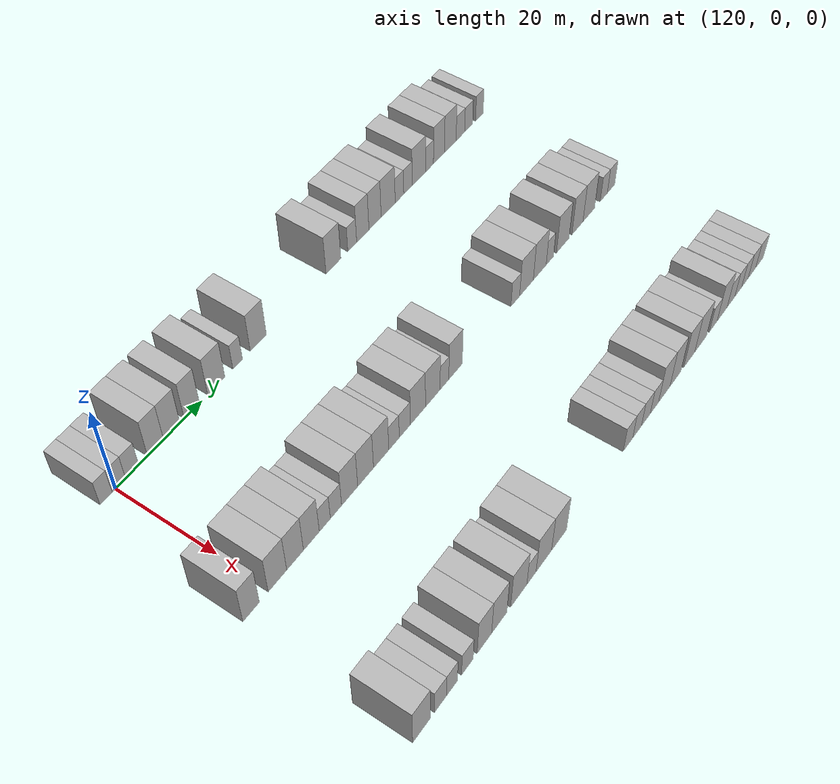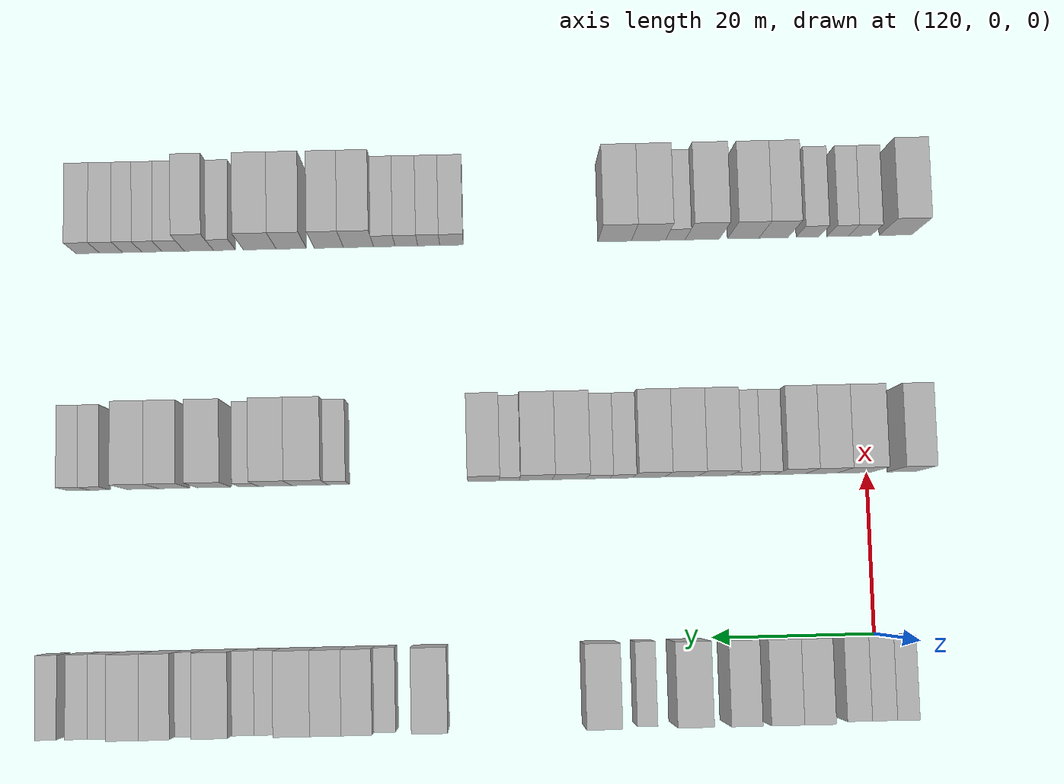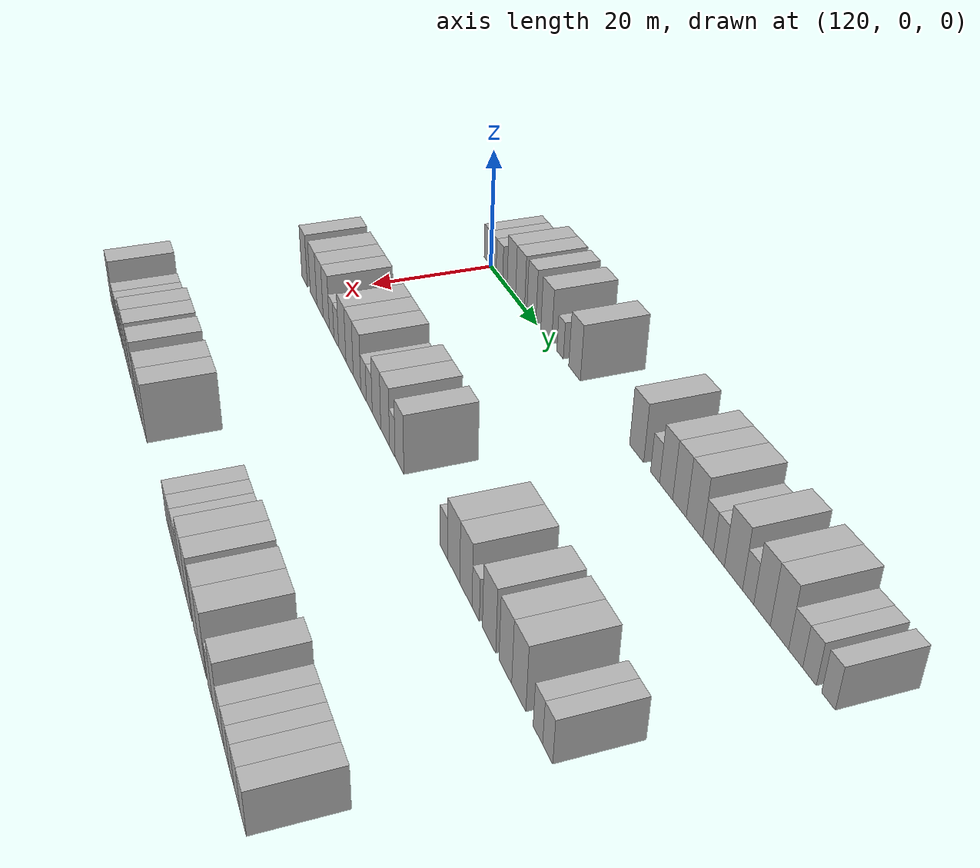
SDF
<sdf version="1.6">
 <world name="default">
  <model name="building_755">
   <static>1</static>
   <pose>115.0000 -2.1229 0 0.000000 0.000000 0.000000</pose>
   <link name="link">
    <pose>0 0 3.00 0 0 0</pose>
    <collision name="collision"><geometry><box><size>10.0000 2.6728 6.0000</size></box></geometry></collision>
    <visual name="visual">
     <cast_shadows>0</cast_shadows>
     <geometry><box><size>10.0000 2.6728 6.0000</size></box></geometry>
     <material>
      <script>
       <uri>model://HANNAS_wall/materials/scripts</uri>
       <uri>model://HANNAS_wall/materials/textures</uri>
       <name>vrc/HANNAS_wall</name>
      </script>
     </material>
    </visual>
   </link>
  </model>
  <model name="building_756">
   <static>1</static>
   <pose>115.0000 0.7068 0 0.000000 0.000000 0.000000</pose>
   <link name="link">
    <pose>0 0 3.00 0 0 0</pose>
    <collision name="collision"><geometry><box><size>10.0000 2.9867 6.0000</size></box></geometry></collision>
    <visual name="visual">
     <cast_shadows>0</cast_shadows>
     <geometry><box><size>10.0000 2.9867 6.0000</size></box></geometry>
     <material>
      <script>
       <uri>model://HANNAS_wall/materials/scripts</uri>
       <uri>model://HANNAS_wall/materials/textures</uri>
       <name>vrc/HANNAS_wall</name>
      </script>
     </material>
    </visual>
   </link>
  </model>
  <model name="building_757">
   <static>1</static>
   <pose>115.0000 3.6858 0 0.000000 0.000000 0.000000</pose>
   <link name="link">
    <pose>0 0 3.00 0 0 0</pose>
    <collision name="collision"><geometry><box><size>10.0000 2.9713 6.0000</size></box></geometry></collision>
    <visual name="visual">
     <cast_shadows>0</cast_shadows>
     <geometry><box><size>10.0000 2.9713 6.0000</size></box></geometry>
     <material>
      <script>
       <uri>model://HANNAS_wall/materials/scripts</uri>
       <uri>model://HANNAS_wall/materials/textures</uri>
       <name>vrc/HANNAS_wall</name>
      </script>
     </material>
    </visual>
   </link>
  </model>
  <model name="building_758">
   <static>1</static>
   <pose>115.0000 9.0283 0 0.000000 0.000000 0.000000</pose>
   <link name="link">
    <pose>0 0 4.50 0 0 0</pose>
    <collision name="collision"><geometry><box><size>10.0000 3.7136 9.0000</size></box></geometry></collision>
    <visual name="visual">
     <cast_shadows>0</cast_shadows>
     <geometry><box><size>10.0000 3.7136 9.0000</size></box></geometry>
     <material>
      <script>
       <uri>model://HANNAS_wall/materials/scripts</uri>
       <uri>model://HANNAS_wall/materials/textures</uri>
       <name>vrc/HANNAS_wall</name>
      </script>
     </material>
    </visual>
   </link>
  </model>
  <model name="building_759">
   <static>1</static>
   <pose>115.0000 12.8214 0 0.000000 0.000000 0.000000</pose>
   <link name="link">
    <pose>0 0 4.50 0 0 0</pose>
    <collision name="collision"><geometry><box><size>10.0000 3.8724 9.0000</size></box></geometry></collision>
    <visual name="visual">
     <cast_shadows>0</cast_shadows>
     <geometry><box><size>10.0000 3.8724 9.0000</size></box></geometry>
     <material>
      <script>
       <uri>model://HANNAS_wall/materials/scripts</uri>
       <uri>model://HANNAS_wall/materials/textures</uri>
       <name>vrc/HANNAS_wall</name>
      </script>
     </material>
    </visual>
   </link>
  </model>
  <model name="building_760">
   <static>1</static>
   <pose>115.0000 17.5966 0 0.000000 0.000000 0.000000</pose>
   <link name="link">
    <pose>0 0 4.50 0 0 0</pose>
    <collision name="collision"><geometry><box><size>10.0000 3.6781 9.0000</size></box></geometry></collision>
    <visual name="visual">
     <cast_shadows>0</cast_shadows>
     <geometry><box><size>10.0000 3.6781 9.0000</size></box></geometry>
     <material>
      <script>
       <uri>model://HANNAS_wall/materials/scripts</uri>
       <uri>model://HANNAS_wall/materials/textures</uri>
       <name>vrc/HANNAS_wall</name>
      </script>
     </material>
    </visual>
   </link>
  </model>
  <model name="building_761">
   <static>1</static>
   <pose>115.0000 23.5737 0 0.000000 0.000000 0.000000</pose>
   <link name="link">
    <pose>0 0 4.50 0 0 0</pose>
    <collision name="collision"><geometry><box><size>10.0000 4.2760 9.0000</size></box></geometry></collision>
    <visual name="visual">
     <cast_shadows>0</cast_shadows>
     <geometry><box><size>10.0000 4.2760 9.0000</size></box></geometry>
     <material>
      <script>
       <uri>model://HANNAS_wall/materials/scripts</uri>
       <uri>model://HANNAS_wall/materials/textures</uri>
       <name>vrc/HANNAS_wall</name>
      </script>
     </material>
    </visual>
   </link>
  </model>
  <model name="building_762">
   <static>1</static>
   <pose>115.0000 28.9309 0 0.000000 0.000000 0.000000</pose>
   <link name="link">
    <pose>0 0 3.00 0 0 0</pose>
    <collision name="collision"><geometry><box><size>10.0000 2.4384 6.0000</size></box></geometry></collision>
    <visual name="visual">
     <cast_shadows>0</cast_shadows>
     <geometry><box><size>10.0000 2.4384 6.0000</size></box></geometry>
     <material>
      <script>
       <uri>model://HANNAS_wall/materials/scripts</uri>
       <uri>model://HANNAS_wall/materials/textures</uri>
       <name>vrc/HANNAS_wall</name>
      </script>
     </material>
    </visual>
   </link>
  </model>
  <model name="building_763">
   <static>1</static>
   <pose>115.0000 34.2504 0 0.000000 0.000000 0.000000</pose>
   <link name="link">
    <pose>0 0 4.50 0 0 0</pose>
    <collision name="collision"><geometry><box><size>10.0000 4.2006 9.0000</size></box></geometry></collision>
    <visual name="visual">
     <cast_shadows>0</cast_shadows>
     <geometry><box><size>10.0000 4.2006 9.0000</size></box></geometry>
     <material>
      <script>
       <uri>model://HANNAS_wall/materials/scripts</uri>
       <uri>model://HANNAS_wall/materials/textures</uri>
       <name>vrc/HANNAS_wall</name>
      </script>
     </material>
    </visual>
   </link>
  </model>
  <model name="building_764">
   <static>1</static>
   <pose>115.0000 54.7267 0 0.000000 0.000000 0.000000</pose>
   <link name="link">
    <pose>0 0 4.50 0 0 0</pose>
    <collision name="collision"><geometry><box><size>10.0000 4.2507 9.0000</size></box></geometry></collision>
    <visual name="visual">
     <cast_shadows>0</cast_shadows>
     <geometry><box><size>10.0000 4.2507 9.0000</size></box></geometry>
     <material>
      <script>
       <uri>model://HANNAS_wall/materials/scripts</uri>
       <uri>model://HANNAS_wall/materials/textures</uri>
       <name>vrc/HANNAS_wall</name>
      </script>
     </material>
    </visual>
   </link>
  </model>
  <model name="building_765">
   <static>1</static>
   <pose>115.0000 60.1450 0 0.000000 0.000000 0.000000</pose>
   <link name="link">
    <pose>0 0 3.00 0 0 0</pose>
    <collision name="collision"><geometry><box><size>10.0000 2.5859 6.0000</size></box></geometry></collision>
    <visual name="visual">
     <cast_shadows>0</cast_shadows>
     <geometry><box><size>10.0000 2.5859 6.0000</size></box></geometry>
     <material>
      <script>
       <uri>model://HANNAS_wall/materials/scripts</uri>
       <uri>model://HANNAS_wall/materials/textures</uri>
       <name>vrc/HANNAS_wall</name>
      </script>
     </material>
    </visual>
   </link>
  </model>
  <model name="building_766">
   <static>1</static>
   <pose>115.0000 63.2514 0 0.000000 0.000000 0.000000</pose>
   <link name="link">
    <pose>0 0 4.50 0 0 0</pose>
    <collision name="collision"><geometry><box><size>10.0000 3.6270 9.0000</size></box></geometry></collision>
    <visual name="visual">
     <cast_shadows>0</cast_shadows>
     <geometry><box><size>10.0000 3.6270 9.0000</size></box></geometry>
     <material>
      <script>
       <uri>model://HANNAS_wall/materials/scripts</uri>
       <uri>model://HANNAS_wall/materials/textures</uri>
       <name>vrc/HANNAS_wall</name>
      </script>
     </material>
    </visual>
   </link>
  </model>
  <model name="building_767">
   <static>1</static>
   <pose>115.0000 66.9004 0 0.000000 0.000000 0.000000</pose>
   <link name="link">
    <pose>0 0 4.50 0 0 0</pose>
    <collision name="collision"><geometry><box><size>10.0000 3.6708 9.0000</size></box></geometry></collision>
    <visual name="visual">
     <cast_shadows>0</cast_shadows>
     <geometry><box><size>10.0000 3.6708 9.0000</size></box></geometry>
     <material>
      <script>
       <uri>model://HANNAS_wall/materials/scripts</uri>
       <uri>model://HANNAS_wall/materials/textures</uri>
       <name>vrc/HANNAS_wall</name>
      </script>
     </material>
    </visual>
   </link>
  </model>
  <model name="building_768">
   <static>1</static>
   <pose>115.0000 70.8795 0 0.000000 0.000000 0.000000</pose>
   <link name="link">
    <pose>0 0 4.50 0 0 0</pose>
    <collision name="collision"><geometry><box><size>10.0000 4.2875 9.0000</size></box></geometry></collision>
    <visual name="visual">
     <cast_shadows>0</cast_shadows>
     <geometry><box><size>10.0000 4.2875 9.0000</size></box></geometry>
     <material>
      <script>
       <uri>model://HANNAS_wall/materials/scripts</uri>
       <uri>model://HANNAS_wall/materials/textures</uri>
       <name>vrc/HANNAS_wall</name>
      </script>
     </material>
    </visual>
   </link>
  </model>
  <model name="building_769">
   <static>1</static>
   <pose>115.0000 74.3492 0 0.000000 0.000000 0.000000</pose>
   <link name="link">
    <pose>0 0 3.00 0 0 0</pose>
    <collision name="collision"><geometry><box><size>10.0000 2.6519 6.0000</size></box></geometry></collision>
    <visual name="visual">
     <cast_shadows>0</cast_shadows>
     <geometry><box><size>10.0000 2.6519 6.0000</size></box></geometry>
     <material>
      <script>
       <uri>model://HANNAS_wall/materials/scripts</uri>
       <uri>model://HANNAS_wall/materials/textures</uri>
       <name>vrc/HANNAS_wall</name>
      </script>
     </material>
    </visual>
   </link>
  </model>
  <model name="building_770">
   <static>1</static>
   <pose>115.0000 76.9980 0 0.000000 0.000000 0.000000</pose>
   <link name="link">
    <pose>0 0 3.00 0 0 0</pose>
    <collision name="collision"><geometry><box><size>10.0000 2.6456 6.0000</size></box></geometry></collision>
    <visual name="visual">
     <cast_shadows>0</cast_shadows>
     <geometry><box><size>10.0000 2.6456 6.0000</size></box></geometry>
     <material>
      <script>
       <uri>model://HANNAS_wall/materials/scripts</uri>
       <uri>model://HANNAS_wall/materials/textures</uri>
       <name>vrc/HANNAS_wall</name>
      </script>
     </material>
    </visual>
   </link>
  </model>
  <model name="building_771">
   <static>1</static>
   <pose>115.0000 80.4438 0 0.000000 0.000000 0.000000</pose>
   <link name="link">
    <pose>0 0 4.50 0 0 0</pose>
    <collision name="collision"><geometry><box><size>10.0000 4.2459 9.0000</size></box></geometry></collision>
    <visual name="visual">
     <cast_shadows>0</cast_shadows>
     <geometry><box><size>10.0000 4.2459 9.0000</size></box></geometry>
     <material>
      <script>
       <uri>model://HANNAS_wall/materials/scripts</uri>
       <uri>model://HANNAS_wall/materials/textures</uri>
       <name>vrc/HANNAS_wall</name>
      </script>
     </material>
    </visual>
   </link>
  </model>
  <model name="building_772">
   <static>1</static>
   <pose>115.0000 83.8371 0 0.000000 0.000000 0.000000</pose>
   <link name="link">
    <pose>0 0 3.00 0 0 0</pose>
    <collision name="collision"><geometry><box><size>10.0000 2.5406 6.0000</size></box></geometry></collision>
    <visual name="visual">
     <cast_shadows>0</cast_shadows>
     <geometry><box><size>10.0000 2.5406 6.0000</size></box></geometry>
     <material>
      <script>
       <uri>model://HANNAS_wall/materials/scripts</uri>
       <uri>model://HANNAS_wall/materials/textures</uri>
       <name>vrc/HANNAS_wall</name>
      </script>
     </material>
    </visual>
   </link>
  </model>
  <model name="building_773">
   <static>1</static>
   <pose>115.0000 86.9209 0 0.000000 0.000000 0.000000</pose>
   <link name="link">
    <pose>0 0 4.50 0 0 0</pose>
    <collision name="collision"><geometry><box><size>10.0000 3.6271 9.0000</size></box></geometry></collision>
    <visual name="visual">
     <cast_shadows>0</cast_shadows>
     <geometry><box><size>10.0000 3.6271 9.0000</size></box></geometry>
     <material>
      <script>
       <uri>model://HANNAS_wall/materials/scripts</uri>
       <uri>model://HANNAS_wall/materials/textures</uri>
       <name>vrc/HANNAS_wall</name>
      </script>
     </material>
    </visual>
   </link>
  </model>
  <model name="building_774">
   <static>1</static>
   <pose>115.0000 90.6506 0 0.000000 0.000000 0.000000</pose>
   <link name="link">
    <pose>0 0 4.50 0 0 0</pose>
    <collision name="collision"><geometry><box><size>10.0000 3.8322 9.0000</size></box></geometry></collision>
    <visual name="visual">
     <cast_shadows>0</cast_shadows>
     <geometry><box><size>10.0000 3.8322 9.0000</size></box></geometry>
     <material>
      <script>
       <uri>model://HANNAS_wall/materials/scripts</uri>
       <uri>model://HANNAS_wall/materials/textures</uri>
       <name>vrc/HANNAS_wall</name>
      </script>
     </material>
    </visual>
   </link>
  </model>
  <model name="building_775">
   <static>1</static>
   <pose>115.0000 94.0001 0 0.000000 0.000000 0.000000</pose>
   <link name="link">
    <pose>0 0 3.00 0 0 0</pose>
    <collision name="collision"><geometry><box><size>10.0000 2.8668 6.0000</size></box></geometry></collision>
    <visual name="visual">
     <cast_shadows>0</cast_shadows>
     <geometry><box><size>10.0000 2.8668 6.0000</size></box></geometry>
     <material>
      <script>
       <uri>model://HANNAS_wall/materials/scripts</uri>
       <uri>model://HANNAS_wall/materials/textures</uri>
       <name>vrc/HANNAS_wall</name>
      </script>
     </material>
    </visual>
   </link>
  </model>
  <model name="building_776">
   <static>1</static>
   <pose>115.0000 96.7827 0 0.000000 0.000000 0.000000</pose>
   <link name="link">
    <pose>0 0 3.00 0 0 0</pose>
    <collision name="collision"><geometry><box><size>10.0000 2.6986 6.0000</size></box></geometry></collision>
    <visual name="visual">
     <cast_shadows>0</cast_shadows>
     <geometry><box><size>10.0000 2.6986 6.0000</size></box></geometry>
     <material>
      <script>
       <uri>model://HANNAS_wall/materials/scripts</uri>
       <uri>model://HANNAS_wall/materials/textures</uri>
       <name>vrc/HANNAS_wall</name>
      </script>
     </material>
    </visual>
   </link>
  </model>
  <model name="building_777">
   <static>1</static>
   <pose>115.0000 100.4286 0 0.000000 0.000000 0.000000</pose>
   <link name="link">
    <pose>0 0 3.00 0 0 0</pose>
    <collision name="collision"><geometry><box><size>10.0000 2.5932 6.0000</size></box></geometry></collision>
    <visual name="visual">
     <cast_shadows>0</cast_shadows>
     <geometry><box><size>10.0000 2.5932 6.0000</size></box></geometry>
     <material>
      <script>
       <uri>model://HANNAS_wall/materials/scripts</uri>
       <uri>model://HANNAS_wall/materials/textures</uri>
       <name>vrc/HANNAS_wall</name>
      </script>
     </material>
    </visual>
   </link>
  </model>
  <model name="building_969">
   <static>1</static>
   <pose>145.0000 -4.3746 0 0.000000 0.000000 0.000000</pose>
   <link name="link">
    <pose>0 0 4.50 0 0 0</pose>
    <collision name="collision"><geometry><box><size>10.0000 3.7207 9.0000</size></box></geometry></collision>
    <visual name="visual">
     <cast_shadows>0</cast_shadows>
     <geometry><box><size>10.0000 3.7207 9.0000</size></box></geometry>
     <material>
      <script>
       <uri>model://HANNAS_wall/materials/scripts</uri>
       <uri>model://HANNAS_wall/materials/textures</uri>
       <name>vrc/HANNAS_wall</name>
      </script>
     </material>
    </visual>
   </link>
  </model>
  <model name="building_970">
   <static>1</static>
   <pose>145.0000 1.6279 0 0.000000 0.000000 0.000000</pose>
   <link name="link">
    <pose>0 0 4.50 0 0 0</pose>
    <collision name="collision"><geometry><box><size>10.0000 4.2842 9.0000</size></box></geometry></collision>
    <visual name="visual">
     <cast_shadows>0</cast_shadows>
     <geometry><box><size>10.0000 4.2842 9.0000</size></box></geometry>
     <material>
      <script>
       <uri>model://HANNAS_wall/materials/scripts</uri>
       <uri>model://HANNAS_wall/materials/textures</uri>
       <name>vrc/HANNAS_wall</name>
      </script>
     </material>
    </visual>
   </link>
  </model>
  <model name="building_971">
   <static>1</static>
   <pose>145.0000 5.7610 0 0.000000 0.000000 0.000000</pose>
   <link name="link">
    <pose>0 0 4.50 0 0 0</pose>
    <collision name="collision"><geometry><box><size>10.0000 3.9819 9.0000</size></box></geometry></collision>
    <visual name="visual">
     <cast_shadows>0</cast_shadows>
     <geometry><box><size>10.0000 3.9819 9.0000</size></box></geometry>
     <material>
      <script>
       <uri>model://HANNAS_wall/materials/scripts</uri>
       <uri>model://HANNAS_wall/materials/textures</uri>
       <name>vrc/HANNAS_wall</name>
      </script>
     </material>
    </visual>
   </link>
  </model>
  <model name="building_972">
   <static>1</static>
   <pose>145.0000 9.6637 0 0.000000 0.000000 0.000000</pose>
   <link name="link">
    <pose>0 0 4.50 0 0 0</pose>
    <collision name="collision"><geometry><box><size>10.0000 3.8235 9.0000</size></box></geometry></collision>
    <visual name="visual">
     <cast_shadows>0</cast_shadows>
     <geometry><box><size>10.0000 3.8235 9.0000</size></box></geometry>
     <material>
      <script>
       <uri>model://HANNAS_wall/materials/scripts</uri>
       <uri>model://HANNAS_wall/materials/textures</uri>
       <name>vrc/HANNAS_wall</name>
      </script>
     </material>
    </visual>
   </link>
  </model>
  <model name="building_973">
   <static>1</static>
   <pose>145.0000 12.9315 0 0.000000 0.000000 0.000000</pose>
   <link name="link">
    <pose>0 0 3.00 0 0 0</pose>
    <collision name="collision"><geometry><box><size>10.0000 2.7122 6.0000</size></box></geometry></collision>
    <visual name="visual">
     <cast_shadows>0</cast_shadows>
     <geometry><box><size>10.0000 2.7122 6.0000</size></box></geometry>
     <material>
      <script>
       <uri>model://HANNAS_wall/materials/scripts</uri>
       <uri>model://HANNAS_wall/materials/textures</uri>
       <name>vrc/HANNAS_wall</name>
      </script>
     </material>
    </visual>
   </link>
  </model>
  <model name="building_974">
   <static>1</static>
   <pose>145.0000 15.6826 0 0.000000 0.000000 0.000000</pose>
   <link name="link">
    <pose>0 0 3.00 0 0 0</pose>
    <collision name="collision"><geometry><box><size>10.0000 2.7899 6.0000</size></box></geometry></collision>
    <visual name="visual">
     <cast_shadows>0</cast_shadows>
     <geometry><box><size>10.0000 2.7899 6.0000</size></box></geometry>
     <material>
      <script>
       <uri>model://HANNAS_wall/materials/scripts</uri>
       <uri>model://HANNAS_wall/materials/textures</uri>
       <name>vrc/HANNAS_wall</name>
      </script>
     </material>
    </visual>
   </link>
  </model>
  <model name="building_975">
   <static>1</static>
   <pose>145.0000 19.1135 0 0.000000 0.000000 0.000000</pose>
   <link name="link">
    <pose>0 0 4.50 0 0 0</pose>
    <collision name="collision"><geometry><box><size>10.0000 4.0720 9.0000</size></box></geometry></collision>
    <visual name="visual">
     <cast_shadows>0</cast_shadows>
     <geometry><box><size>10.0000 4.0720 9.0000</size></box></geometry>
     <material>
      <script>
       <uri>model://HANNAS_wall/materials/scripts</uri>
       <uri>model://HANNAS_wall/materials/textures</uri>
       <name>vrc/HANNAS_wall</name>
      </script>
     </material>
    </visual>
   </link>
  </model>
  <model name="building_976">
   <static>1</static>
   <pose>145.0000 23.1868 0 0.000000 0.000000 0.000000</pose>
   <link name="link">
    <pose>0 0 4.50 0 0 0</pose>
    <collision name="collision"><geometry><box><size>10.0000 4.0746 9.0000</size></box></geometry></collision>
    <visual name="visual">
     <cast_shadows>0</cast_shadows>
     <geometry><box><size>10.0000 4.0746 9.0000</size></box></geometry>
     <material>
      <script>
       <uri>model://HANNAS_wall/materials/scripts</uri>
       <uri>model://HANNAS_wall/materials/textures</uri>
       <name>vrc/HANNAS_wall</name>
      </script>
     </material>
    </visual>
   </link>
  </model>
  <model name="building_977">
   <static>1</static>
   <pose>145.0000 27.2304 0 0.000000 0.000000 0.000000</pose>
   <link name="link">
    <pose>0 0 4.50 0 0 0</pose>
    <collision name="collision"><geometry><box><size>10.0000 4.0126 9.0000</size></box></geometry></collision>
    <visual name="visual">
     <cast_shadows>0</cast_shadows>
     <geometry><box><size>10.0000 4.0126 9.0000</size></box></geometry>
     <material>
      <script>
       <uri>model://HANNAS_wall/materials/scripts</uri>
       <uri>model://HANNAS_wall/materials/textures</uri>
       <name>vrc/HANNAS_wall</name>
      </script>
     </material>
    </visual>
   </link>
  </model>
  <model name="building_978">
   <static>1</static>
   <pose>145.0000 30.6391 0 0.000000 0.000000 0.000000</pose>
   <link name="link">
    <pose>0 0 3.00 0 0 0</pose>
    <collision name="collision"><geometry><box><size>10.0000 2.8049 6.0000</size></box></geometry></collision>
    <visual name="visual">
     <cast_shadows>0</cast_shadows>
     <geometry><box><size>10.0000 2.8049 6.0000</size></box></geometry>
     <material>
      <script>
       <uri>model://HANNAS_wall/materials/scripts</uri>
       <uri>model://HANNAS_wall/materials/textures</uri>
       <name>vrc/HANNAS_wall</name>
      </script>
     </material>
    </visual>
   </link>
  </model>
  <model name="building_979">
   <static>1</static>
   <pose>145.0000 33.5386 0 0.000000 0.000000 0.000000</pose>
   <link name="link">
    <pose>0 0 3.00 0 0 0</pose>
    <collision name="collision"><geometry><box><size>10.0000 2.9940 6.0000</size></box></geometry></collision>
    <visual name="visual">
     <cast_shadows>0</cast_shadows>
     <geometry><box><size>10.0000 2.9940 6.0000</size></box></geometry>
     <material>
      <script>
       <uri>model://HANNAS_wall/materials/scripts</uri>
       <uri>model://HANNAS_wall/materials/textures</uri>
       <name>vrc/HANNAS_wall</name>
      </script>
     </material>
    </visual>
   </link>
  </model>
  <model name="building_980">
   <static>1</static>
   <pose>145.0000 37.1165 0 0.000000 0.000000 0.000000</pose>
   <link name="link">
    <pose>0 0 4.50 0 0 0</pose>
    <collision name="collision"><geometry><box><size>10.0000 4.1619 9.0000</size></box></geometry></collision>
    <visual name="visual">
     <cast_shadows>0</cast_shadows>
     <geometry><box><size>10.0000 4.1619 9.0000</size></box></geometry>
     <material>
      <script>
       <uri>model://HANNAS_wall/materials/scripts</uri>
       <uri>model://HANNAS_wall/materials/textures</uri>
       <name>vrc/HANNAS_wall</name>
      </script>
     </material>
    </visual>
   </link>
  </model>
  <model name="building_981">
   <static>1</static>
   <pose>145.0000 41.2536 0 0.000000 0.000000 0.000000</pose>
   <link name="link">
    <pose>0 0 4.50 0 0 0</pose>
    <collision name="collision"><geometry><box><size>10.0000 4.1123 9.0000</size></box></geometry></collision>
    <visual name="visual">
     <cast_shadows>0</cast_shadows>
     <geometry><box><size>10.0000 4.1123 9.0000</size></box></geometry>
     <material>
      <script>
       <uri>model://HANNAS_wall/materials/scripts</uri>
       <uri>model://HANNAS_wall/materials/textures</uri>
       <name>vrc/HANNAS_wall</name>
      </script>
     </material>
    </visual>
   </link>
  </model>
  <model name="building_982">
   <static>1</static>
   <pose>145.0000 44.5601 0 0.000000 0.000000 0.000000</pose>
   <link name="link">
    <pose>0 0 3.00 0 0 0</pose>
    <collision name="collision"><geometry><box><size>10.0000 2.5006 6.0000</size></box></geometry></collision>
    <visual name="visual">
     <cast_shadows>0</cast_shadows>
     <geometry><box><size>10.0000 2.5006 6.0000</size></box></geometry>
     <material>
      <script>
       <uri>model://HANNAS_wall/materials/scripts</uri>
       <uri>model://HANNAS_wall/materials/textures</uri>
       <name>vrc/HANNAS_wall</name>
      </script>
     </material>
    </visual>
   </link>
  </model>
  <model name="building_983">
   <static>1</static>
   <pose>145.0000 47.7530 0 0.000000 0.000000 0.000000</pose>
   <link name="link">
    <pose>0 0 4.50 0 0 0</pose>
    <collision name="collision"><geometry><box><size>10.0000 3.8853 9.0000</size></box></geometry></collision>
    <visual name="visual">
     <cast_shadows>0</cast_shadows>
     <geometry><box><size>10.0000 3.8853 9.0000</size></box></geometry>
     <material>
      <script>
       <uri>model://HANNAS_wall/materials/scripts</uri>
       <uri>model://HANNAS_wall/materials/textures</uri>
       <name>vrc/HANNAS_wall</name>
      </script>
     </material>
    </visual>
   </link>
  </model>
  <model name="building_984">
   <static>1</static>
   <pose>145.0000 65.7818 0 0.000000 0.000000 0.000000</pose>
   <link name="link">
    <pose>0 0 3.00 0 0 0</pose>
    <collision name="collision"><geometry><box><size>10.0000 2.7241 6.0000</size></box></geometry></collision>
    <visual name="visual">
     <cast_shadows>0</cast_shadows>
     <geometry><box><size>10.0000 2.7241 6.0000</size></box></geometry>
     <material>
      <script>
       <uri>model://HANNAS_wall/materials/scripts</uri>
       <uri>model://HANNAS_wall/materials/textures</uri>
       <name>vrc/HANNAS_wall</name>
      </script>
     </material>
    </visual>
   </link>
  </model>
  <model name="building_985">
   <static>1</static>
   <pose>145.0000 69.3384 0 0.000000 0.000000 0.000000</pose>
   <link name="link">
    <pose>0 0 4.50 0 0 0</pose>
    <collision name="collision"><geometry><box><size>10.0000 4.3892 9.0000</size></box></geometry></collision>
    <visual name="visual">
     <cast_shadows>0</cast_shadows>
     <geometry><box><size>10.0000 4.3892 9.0000</size></box></geometry>
     <material>
      <script>
       <uri>model://HANNAS_wall/materials/scripts</uri>
       <uri>model://HANNAS_wall/materials/textures</uri>
       <name>vrc/HANNAS_wall</name>
      </script>
     </material>
    </visual>
   </link>
  </model>
  <model name="building_986">
   <static>1</static>
   <pose>145.0000 73.6228 0 0.000000 0.000000 0.000000</pose>
   <link name="link">
    <pose>0 0 4.50 0 0 0</pose>
    <collision name="collision"><geometry><box><size>10.0000 4.1795 9.0000</size></box></geometry></collision>
    <visual name="visual">
     <cast_shadows>0</cast_shadows>
     <geometry><box><size>10.0000 4.1795 9.0000</size></box></geometry>
     <material>
      <script>
       <uri>model://HANNAS_wall/materials/scripts</uri>
       <uri>model://HANNAS_wall/materials/textures</uri>
       <name>vrc/HANNAS_wall</name>
      </script>
     </material>
    </visual>
   </link>
  </model>
  <model name="building_987">
   <static>1</static>
   <pose>145.0000 76.9175 0 0.000000 0.000000 0.000000</pose>
   <link name="link">
    <pose>0 0 3.00 0 0 0</pose>
    <collision name="collision"><geometry><box><size>10.0000 2.4099 6.0000</size></box></geometry></collision>
    <visual name="visual">
     <cast_shadows>0</cast_shadows>
     <geometry><box><size>10.0000 2.4099 6.0000</size></box></geometry>
     <material>
      <script>
       <uri>model://HANNAS_wall/materials/scripts</uri>
       <uri>model://HANNAS_wall/materials/textures</uri>
       <name>vrc/HANNAS_wall</name>
      </script>
     </material>
    </visual>
   </link>
  </model>
  <model name="building_988">
   <static>1</static>
   <pose>145.0000 81.2275 0 0.000000 0.000000 0.000000</pose>
   <link name="link">
    <pose>0 0 4.50 0 0 0</pose>
    <collision name="collision"><geometry><box><size>10.0000 4.2102 9.0000</size></box></geometry></collision>
    <visual name="visual">
     <cast_shadows>0</cast_shadows>
     <geometry><box><size>10.0000 4.2102 9.0000</size></box></geometry>
     <material>
      <script>
       <uri>model://HANNAS_wall/materials/scripts</uri>
       <uri>model://HANNAS_wall/materials/textures</uri>
       <name>vrc/HANNAS_wall</name>
      </script>
     </material>
    </visual>
   </link>
  </model>
  <model name="building_989">
   <static>1</static>
   <pose>145.0000 86.2240 0 0.000000 0.000000 0.000000</pose>
   <link name="link">
    <pose>0 0 4.50 0 0 0</pose>
    <collision name="collision"><geometry><box><size>10.0000 3.7828 9.0000</size></box></geometry></collision>
    <visual name="visual">
     <cast_shadows>0</cast_shadows>
     <geometry><box><size>10.0000 3.7828 9.0000</size></box></geometry>
     <material>
      <script>
       <uri>model://HANNAS_wall/materials/scripts</uri>
       <uri>model://HANNAS_wall/materials/textures</uri>
       <name>vrc/HANNAS_wall</name>
      </script>
     </material>
    </visual>
   </link>
  </model>
  <model name="building_990">
   <static>1</static>
   <pose>145.0000 90.1358 0 0.000000 0.000000 0.000000</pose>
   <link name="link">
    <pose>0 0 4.50 0 0 0</pose>
    <collision name="collision"><geometry><box><size>10.0000 4.0407 9.0000</size></box></geometry></collision>
    <visual name="visual">
     <cast_shadows>0</cast_shadows>
     <geometry><box><size>10.0000 4.0407 9.0000</size></box></geometry>
     <material>
      <script>
       <uri>model://HANNAS_wall/materials/scripts</uri>
       <uri>model://HANNAS_wall/materials/textures</uri>
       <name>vrc/HANNAS_wall</name>
      </script>
     </material>
    </visual>
   </link>
  </model>
  <model name="building_991">
   <static>1</static>
   <pose>145.0000 95.4342 0 0.000000 0.000000 0.000000</pose>
   <link name="link">
    <pose>0 0 3.00 0 0 0</pose>
    <collision name="collision"><geometry><box><size>10.0000 2.5560 6.0000</size></box></geometry></collision>
    <visual name="visual">
     <cast_shadows>0</cast_shadows>
     <geometry><box><size>10.0000 2.5560 6.0000</size></box></geometry>
     <material>
      <script>
       <uri>model://HANNAS_wall/materials/scripts</uri>
       <uri>model://HANNAS_wall/materials/textures</uri>
       <name>vrc/HANNAS_wall</name>
      </script>
     </material>
    </visual>
   </link>
  </model>
  <model name="building_992">
   <static>1</static>
   <pose>145.0000 98.0254 0 0.000000 0.000000 0.000000</pose>
   <link name="link">
    <pose>0 0 3.00 0 0 0</pose>
    <collision name="collision"><geometry><box><size>10.0000 2.6264 6.0000</size></box></geometry></collision>
    <visual name="visual">
     <cast_shadows>0</cast_shadows>
     <geometry><box><size>10.0000 2.6264 6.0000</size></box></geometry>
     <material>
      <script>
       <uri>model://HANNAS_wall/materials/scripts</uri>
       <uri>model://HANNAS_wall/materials/textures</uri>
       <name>vrc/HANNAS_wall</name>
      </script>
     </material>
    </visual>
   </link>
  </model>
  <model name="building_1193">
   <static>1</static>
   <pose>175.0000 -5.0482 0 0.000000 0.000000 0.000000</pose>
   <link name="link">
    <pose>0 0 4.50 0 0 0</pose>
    <collision name="collision"><geometry><box><size>10.0000 4.1565 9.0000</size></box></geometry></collision>
    <visual name="visual">
     <cast_shadows>0</cast_shadows>
     <geometry><box><size>10.0000 4.1565 9.0000</size></box></geometry>
     <material>
      <script>
       <uri>model://HANNAS_wall/materials/scripts</uri>
       <uri>model://HANNAS_wall/materials/textures</uri>
       <name>vrc/HANNAS_wall</name>
      </script>
     </material>
    </visual>
   </link>
  </model>
  <model name="building_1194">
   <static>1</static>
   <pose>175.0000 -0.5173 0 0.000000 0.000000 0.000000</pose>
   <link name="link">
    <pose>0 0 3.00 0 0 0</pose>
    <collision name="collision"><geometry><box><size>10.0000 2.9053 6.0000</size></box></geometry></collision>
    <visual name="visual">
     <cast_shadows>0</cast_shadows>
     <geometry><box><size>10.0000 2.9053 6.0000</size></box></geometry>
     <material>
      <script>
       <uri>model://HANNAS_wall/materials/scripts</uri>
       <uri>model://HANNAS_wall/materials/textures</uri>
       <name>vrc/HANNAS_wall</name>
      </script>
     </material>
    </visual>
   </link>
  </model>
  <model name="building_1195">
   <static>1</static>
   <pose>175.0000 2.2769 0 0.000000 0.000000 0.000000</pose>
   <link name="link">
    <pose>0 0 3.00 0 0 0</pose>
    <collision name="collision"><geometry><box><size>10.0000 2.6831 6.0000</size></box></geometry></collision>
    <visual name="visual">
     <cast_shadows>0</cast_shadows>
     <geometry><box><size>10.0000 2.6831 6.0000</size></box></geometry>
     <material>
      <script>
       <uri>model://HANNAS_wall/materials/scripts</uri>
       <uri>model://HANNAS_wall/materials/textures</uri>
       <name>vrc/HANNAS_wall</name>
      </script>
     </material>
    </visual>
   </link>
  </model>
  <model name="building_1196">
   <static>1</static>
   <pose>175.0000 6.0760 0 0.000000 0.000000 0.000000</pose>
   <link name="link">
    <pose>0 0 3.00 0 0 0</pose>
    <collision name="collision"><geometry><box><size>10.0000 2.9151 6.0000</size></box></geometry></collision>
    <visual name="visual">
     <cast_shadows>0</cast_shadows>
     <geometry><box><size>10.0000 2.9151 6.0000</size></box></geometry>
     <material>
      <script>
       <uri>model://HANNAS_wall/materials/scripts</uri>
       <uri>model://HANNAS_wall/materials/textures</uri>
       <name>vrc/HANNAS_wall</name>
      </script>
     </material>
    </visual>
   </link>
  </model>
  <model name="building_1197">
   <static>1</static>
   <pose>175.0000 10.3898 0 0.000000 0.000000 0.000000</pose>
   <link name="link">
    <pose>0 0 4.50 0 0 0</pose>
    <collision name="collision"><geometry><box><size>10.0000 3.7124 9.0000</size></box></geometry></collision>
    <visual name="visual">
     <cast_shadows>0</cast_shadows>
     <geometry><box><size>10.0000 3.7124 9.0000</size></box></geometry>
     <material>
      <script>
       <uri>model://HANNAS_wall/materials/scripts</uri>
       <uri>model://HANNAS_wall/materials/textures</uri>
       <name>vrc/HANNAS_wall</name>
      </script>
     </material>
    </visual>
   </link>
  </model>
  <model name="building_1198">
   <static>1</static>
   <pose>175.0000 14.2329 0 0.000000 0.000000 0.000000</pose>
   <link name="link">
    <pose>0 0 4.50 0 0 0</pose>
    <collision name="collision"><geometry><box><size>10.0000 3.9738 9.0000</size></box></geometry></collision>
    <visual name="visual">
     <cast_shadows>0</cast_shadows>
     <geometry><box><size>10.0000 3.9738 9.0000</size></box></geometry>
     <material>
      <script>
       <uri>model://HANNAS_wall/materials/scripts</uri>
       <uri>model://HANNAS_wall/materials/textures</uri>
       <name>vrc/HANNAS_wall</name>
      </script>
     </material>
    </visual>
   </link>
  </model>
  <model name="building_1199">
   <static>1</static>
   <pose>175.0000 19.3916 0 0.000000 0.000000 0.000000</pose>
   <link name="link">
    <pose>0 0 4.50 0 0 0</pose>
    <collision name="collision"><geometry><box><size>10.0000 4.3437 9.0000</size></box></geometry></collision>
    <visual name="visual">
     <cast_shadows>0</cast_shadows>
     <geometry><box><size>10.0000 4.3437 9.0000</size></box></geometry>
     <material>
      <script>
       <uri>model://HANNAS_wall/materials/scripts</uri>
       <uri>model://HANNAS_wall/materials/textures</uri>
       <name>vrc/HANNAS_wall</name>
      </script>
     </material>
    </visual>
   </link>
  </model>
  <model name="building_1200">
   <static>1</static>
   <pose>175.0000 22.8204 0 0.000000 0.000000 0.000000</pose>
   <link name="link">
    <pose>0 0 3.00 0 0 0</pose>
    <collision name="collision"><geometry><box><size>10.0000 2.5139 6.0000</size></box></geometry></collision>
    <visual name="visual">
     <cast_shadows>0</cast_shadows>
     <geometry><box><size>10.0000 2.5139 6.0000</size></box></geometry>
     <material>
      <script>
       <uri>model://HANNAS_wall/materials/scripts</uri>
       <uri>model://HANNAS_wall/materials/textures</uri>
       <name>vrc/HANNAS_wall</name>
      </script>
     </material>
    </visual>
   </link>
  </model>
  <model name="building_1201">
   <static>1</static>
   <pose>175.0000 26.2305 0 0.000000 0.000000 0.000000</pose>
   <link name="link">
    <pose>0 0 4.50 0 0 0</pose>
    <collision name="collision"><geometry><box><size>10.0000 4.3064 9.0000</size></box></geometry></collision>
    <visual name="visual">
     <cast_shadows>0</cast_shadows>
     <geometry><box><size>10.0000 4.3064 9.0000</size></box></geometry>
     <material>
      <script>
       <uri>model://HANNAS_wall/materials/scripts</uri>
       <uri>model://HANNAS_wall/materials/textures</uri>
       <name>vrc/HANNAS_wall</name>
      </script>
     </material>
    </visual>
   </link>
  </model>
  <model name="building_1202">
   <static>1</static>
   <pose>175.0000 30.5059 0 0.000000 0.000000 0.000000</pose>
   <link name="link">
    <pose>0 0 4.50 0 0 0</pose>
    <collision name="collision"><geometry><box><size>10.0000 4.2444 9.0000</size></box></geometry></collision>
    <visual name="visual">
     <cast_shadows>0</cast_shadows>
     <geometry><box><size>10.0000 4.2444 9.0000</size></box></geometry>
     <material>
      <script>
       <uri>model://HANNAS_wall/materials/scripts</uri>
       <uri>model://HANNAS_wall/materials/textures</uri>
       <name>vrc/HANNAS_wall</name>
      </script>
     </material>
    </visual>
   </link>
  </model>
  <model name="building_1203">
   <static>1</static>
   <pose>175.0000 51.1110 0 0.000000 0.000000 0.000000</pose>
   <link name="link">
    <pose>0 0 3.00 0 0 0</pose>
    <collision name="collision"><geometry><box><size>10.0000 2.9886 6.0000</size></box></geometry></collision>
    <visual name="visual">
     <cast_shadows>0</cast_shadows>
     <geometry><box><size>10.0000 2.9886 6.0000</size></box></geometry>
     <material>
      <script>
       <uri>model://HANNAS_wall/materials/scripts</uri>
       <uri>model://HANNAS_wall/materials/textures</uri>
       <name>vrc/HANNAS_wall</name>
      </script>
     </material>
    </visual>
   </link>
  </model>
  <model name="building_1204">
   <static>1</static>
   <pose>175.0000 53.9961 0 0.000000 0.000000 0.000000</pose>
   <link name="link">
    <pose>0 0 3.00 0 0 0</pose>
    <collision name="collision"><geometry><box><size>10.0000 2.7816 6.0000</size></box></geometry></collision>
    <visual name="visual">
     <cast_shadows>0</cast_shadows>
     <geometry><box><size>10.0000 2.7816 6.0000</size></box></geometry>
     <material>
      <script>
       <uri>model://HANNAS_wall/materials/scripts</uri>
       <uri>model://HANNAS_wall/materials/textures</uri>
       <name>vrc/HANNAS_wall</name>
      </script>
     </material>
    </visual>
   </link>
  </model>
  <model name="building_1205">
   <static>1</static>
   <pose>175.0000 56.8135 0 0.000000 0.000000 0.000000</pose>
   <link name="link">
    <pose>0 0 3.00 0 0 0</pose>
    <collision name="collision"><geometry><box><size>10.0000 2.8533 6.0000</size></box></geometry></collision>
    <visual name="visual">
     <cast_shadows>0</cast_shadows>
     <geometry><box><size>10.0000 2.8533 6.0000</size></box></geometry>
     <material>
      <script>
       <uri>model://HANNAS_wall/materials/scripts</uri>
       <uri>model://HANNAS_wall/materials/textures</uri>
       <name>vrc/HANNAS_wall</name>
      </script>
     </material>
    </visual>
   </link>
  </model>
  <model name="building_1206">
   <static>1</static>
   <pose>175.0000 59.5967 0 0.000000 0.000000 0.000000</pose>
   <link name="link">
    <pose>0 0 3.00 0 0 0</pose>
    <collision name="collision"><geometry><box><size>10.0000 2.7131 6.0000</size></box></geometry></collision>
    <visual name="visual">
     <cast_shadows>0</cast_shadows>
     <geometry><box><size>10.0000 2.7131 6.0000</size></box></geometry>
     <material>
      <script>
       <uri>model://HANNAS_wall/materials/scripts</uri>
       <uri>model://HANNAS_wall/materials/textures</uri>
       <name>vrc/HANNAS_wall</name>
      </script>
     </material>
    </visual>
   </link>
  </model>
  <model name="building_1207">
   <static>1</static>
   <pose>175.0000 62.8563 0 0.000000 0.000000 0.000000</pose>
   <link name="link">
    <pose>0 0 4.50 0 0 0</pose>
    <collision name="collision"><geometry><box><size>10.0000 3.8061 9.0000</size></box></geometry></collision>
    <visual name="visual">
     <cast_shadows>0</cast_shadows>
     <geometry><box><size>10.0000 3.8061 9.0000</size></box></geometry>
     <material>
      <script>
       <uri>model://HANNAS_wall/materials/scripts</uri>
       <uri>model://HANNAS_wall/materials/textures</uri>
       <name>vrc/HANNAS_wall</name>
      </script>
     </material>
    </visual>
   </link>
  </model>
  <model name="building_1208">
   <static>1</static>
   <pose>175.0000 66.5953 0 0.000000 0.000000 0.000000</pose>
   <link name="link">
    <pose>0 0 4.50 0 0 0</pose>
    <collision name="collision"><geometry><box><size>10.0000 3.6718 9.0000</size></box></geometry></collision>
    <visual name="visual">
     <cast_shadows>0</cast_shadows>
     <geometry><box><size>10.0000 3.6718 9.0000</size></box></geometry>
     <material>
      <script>
       <uri>model://HANNAS_wall/materials/scripts</uri>
       <uri>model://HANNAS_wall/materials/textures</uri>
       <name>vrc/HANNAS_wall</name>
      </script>
     </material>
    </visual>
   </link>
  </model>
  <model name="building_1209">
   <static>1</static>
   <pose>175.0000 71.3356 0 0.000000 0.000000 0.000000</pose>
   <link name="link">
    <pose>0 0 4.50 0 0 0</pose>
    <collision name="collision"><geometry><box><size>10.0000 3.8088 9.0000</size></box></geometry></collision>
    <visual name="visual">
     <cast_shadows>0</cast_shadows>
     <geometry><box><size>10.0000 3.8088 9.0000</size></box></geometry>
     <material>
      <script>
       <uri>model://HANNAS_wall/materials/scripts</uri>
       <uri>model://HANNAS_wall/materials/textures</uri>
       <name>vrc/HANNAS_wall</name>
      </script>
     </material>
    </visual>
   </link>
  </model>
  <model name="building_1210">
   <static>1</static>
   <pose>175.0000 75.3158 0 0.000000 0.000000 0.000000</pose>
   <link name="link">
    <pose>0 0 4.50 0 0 0</pose>
    <collision name="collision"><geometry><box><size>10.0000 4.1517 9.0000</size></box></geometry></collision>
    <visual name="visual">
     <cast_shadows>0</cast_shadows>
     <geometry><box><size>10.0000 4.1517 9.0000</size></box></geometry>
     <material>
      <script>
       <uri>model://HANNAS_wall/materials/scripts</uri>
       <uri>model://HANNAS_wall/materials/textures</uri>
       <name>vrc/HANNAS_wall</name>
      </script>
     </material>
    </visual>
   </link>
  </model>
  <model name="building_1211">
   <static>1</static>
   <pose>175.0000 79.7766 0 0.000000 0.000000 0.000000</pose>
   <link name="link">
    <pose>0 0 3.00 0 0 0</pose>
    <collision name="collision"><geometry><box><size>10.0000 2.7697 6.0000</size></box></geometry></collision>
    <visual name="visual">
     <cast_shadows>0</cast_shadows>
     <geometry><box><size>10.0000 2.7697 6.0000</size></box></geometry>
     <material>
      <script>
       <uri>model://HANNAS_wall/materials/scripts</uri>
       <uri>model://HANNAS_wall/materials/textures</uri>
       <name>vrc/HANNAS_wall</name>
      </script>
     </material>
    </visual>
   </link>
  </model>
  <model name="building_1212">
   <static>1</static>
   <pose>175.0000 82.9968 0 0.000000 0.000000 0.000000</pose>
   <link name="link">
    <pose>0 0 4.50 0 0 0</pose>
    <collision name="collision"><geometry><box><size>10.0000 3.6707 9.0000</size></box></geometry></collision>
    <visual name="visual">
     <cast_shadows>0</cast_shadows>
     <geometry><box><size>10.0000 3.6707 9.0000</size></box></geometry>
     <material>
      <script>
       <uri>model://HANNAS_wall/materials/scripts</uri>
       <uri>model://HANNAS_wall/materials/textures</uri>
       <name>vrc/HANNAS_wall</name>
      </script>
     </material>
    </visual>
   </link>
  </model>
  <model name="building_1213">
   <static>1</static>
   <pose>175.0000 86.2316 0 0.000000 0.000000 0.000000</pose>
   <link name="link">
    <pose>0 0 3.00 0 0 0</pose>
    <collision name="collision"><geometry><box><size>10.0000 2.7988 6.0000</size></box></geometry></collision>
    <visual name="visual">
     <cast_shadows>0</cast_shadows>
     <geometry><box><size>10.0000 2.7988 6.0000</size></box></geometry>
     <material>
      <script>
       <uri>model://HANNAS_wall/materials/scripts</uri>
       <uri>model://HANNAS_wall/materials/textures</uri>
       <name>vrc/HANNAS_wall</name>
      </script>
     </material>
    </visual>
   </link>
  </model>
  <model name="building_1214">
   <static>1</static>
   <pose>175.0000 88.9225 0 0.000000 0.000000 0.000000</pose>
   <link name="link">
    <pose>0 0 3.00 0 0 0</pose>
    <collision name="collision"><geometry><box><size>10.0000 2.5829 6.0000</size></box></geometry></collision>
    <visual name="visual">
     <cast_shadows>0</cast_shadows>
     <geometry><box><size>10.0000 2.5829 6.0000</size></box></geometry>
     <material>
      <script>
       <uri>model://HANNAS_wall/materials/scripts</uri>
       <uri>model://HANNAS_wall/materials/textures</uri>
       <name>vrc/HANNAS_wall</name>
      </script>
     </material>
    </visual>
   </link>
  </model>
  <model name="building_1215">
   <static>1</static>
   <pose>175.0000 91.4344 0 0.000000 0.000000 0.000000</pose>
   <link name="link">
    <pose>0 0 3.00 0 0 0</pose>
    <collision name="collision"><geometry><box><size>10.0000 2.4409 6.0000</size></box></geometry></collision>
    <visual name="visual">
     <cast_shadows>0</cast_shadows>
     <geometry><box><size>10.0000 2.4409 6.0000</size></box></geometry>
     <material>
      <script>
       <uri>model://HANNAS_wall/materials/scripts</uri>
       <uri>model://HANNAS_wall/materials/textures</uri>
       <name>vrc/HANNAS_wall</name>
      </script>
     </material>
    </visual>
   </link>
  </model>
  <model name="building_1216">
   <static>1</static>
   <pose>175.0000 94.0989 0 0.000000 0.000000 0.000000</pose>
   <link name="link">
    <pose>0 0 3.00 0 0 0</pose>
    <collision name="collision"><geometry><box><size>10.0000 2.8881 6.0000</size></box></geometry></collision>
    <visual name="visual">
     <cast_shadows>0</cast_shadows>
     <geometry><box><size>10.0000 2.8881 6.0000</size></box></geometry>
     <material>
      <script>
       <uri>model://HANNAS_wall/materials/scripts</uri>
       <uri>model://HANNAS_wall/materials/textures</uri>
       <name>vrc/HANNAS_wall</name>
      </script>
     </material>
    </visual>
   </link>
  </model>
  <model name="building_1217">
   <static>1</static>
   <pose>175.0000 97.0313 0 0.000000 0.000000 0.000000</pose>
   <link name="link">
    <pose>0 0 3.00 0 0 0</pose>
    <collision name="collision"><geometry><box><size>10.0000 2.9766 6.0000</size></box></geometry></collision>
    <visual name="visual">
     <cast_shadows>0</cast_shadows>
     <geometry><box><size>10.0000 2.9766 6.0000</size></box></geometry>
     <material>
      <script>
       <uri>model://HANNAS_wall/materials/scripts</uri>
       <uri>model://HANNAS_wall/materials/textures</uri>
       <name>vrc/HANNAS_wall</name>
      </script>
     </material>
    </visual>
   </link>
  </model>
 </world>
</sdf>
